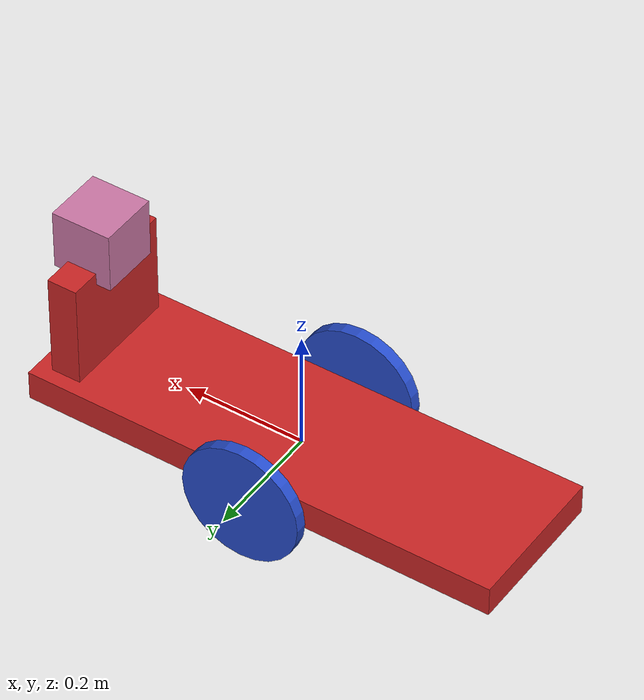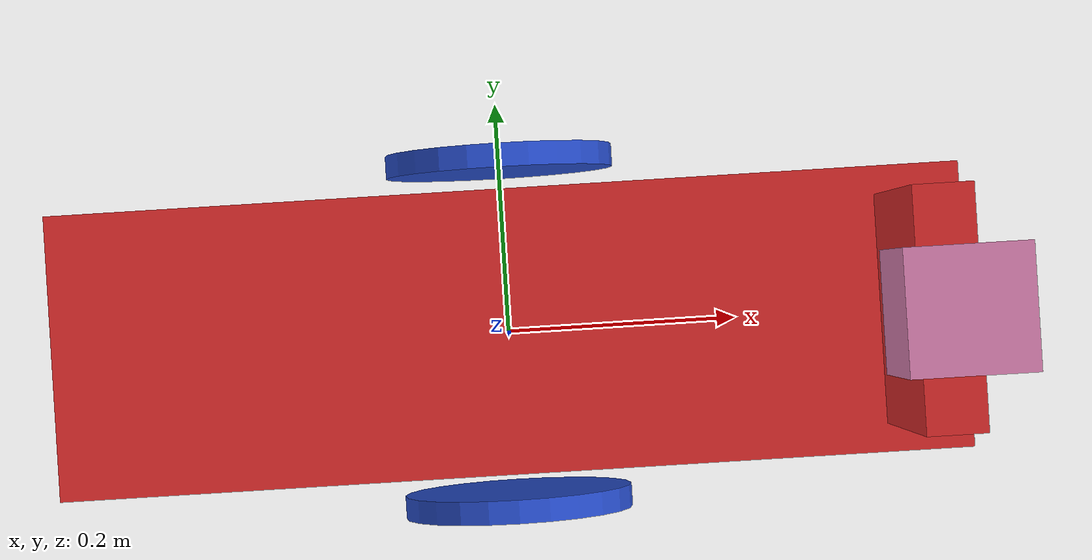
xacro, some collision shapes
<?xml version='1.0'?>

<robot name="my_robot" xmlns:xacro="http://www.ros.org/wiki/xacro">

  <xacro:include filename="$(find my_robot)/urdf/my_robot.gazebo" />

  <link name="robot_footprint"></link>

  <joint name="robot_footprint_joint" type="fixed">
    <origin xyz="0 0 0" rpy="0 0 0" />
    <parent link="robot_footprint"/>
    <child link="chassis" />
  </joint>

  <link name='chassis'>
    <pose>0 0 0.05 0 0 0</pose>

    <inertial>
      <mass value="15.0"/>
      <origin xyz="0.0 0 0" rpy=" 0 0 0"/>
      <inertia
          ixx="0.1" ixy="0" ixz="0"
          iyy="0.1" iyz="0"
          izz="0.1"
      />
    </inertial>

    <collision name='collision'>
      <origin xyz="0 0 0" rpy=" 0 0 0"/>
      <geometry>
        <box size=".8 .25 .05"/>
      </geometry>
    </collision>

    <visual>
      <origin xyz="0 0 0" rpy=" 0 0 0"/>
      <geometry>
        <box size=".8 .25 .05"/>
      </geometry>
    </visual>

    <collision name='front_caster_collision'>
      <origin xyz="0.3 0 -0.05" rpy=" 0 0 0"/>
      <geometry>
        <sphere radius="0.0499"/>
      </geometry>
    </collision>

    <visual>
      <origin xyz="0.3 0 -0.05" rpy=" 0 0 0"/>
      <geometry>
        <sphere radius="0.05"/>
      </geometry>
    </visual>

    <collision name='back_caster_collision'>
      <origin xyz="-0.3 0 -0.05" rpy=" 0 1.5707 1.5707"/>
      <geometry>
        <cylinder length="0.02" radius="0.05"/>
      </geometry>
    </collision>

    <visual>
      <origin xyz="-0.3 0 -0.05" rpy=" 0 1.5707 1.5707"/>
      <geometry>
        <cylinder length="0.02" radius="0.05"/>
      </geometry>
    </visual>

    <collision name='platform'>
      <origin xyz="0.35 0 0.1" rpy=" 0 0 0"/>
      <geometry>
        <box size=".05 .2 .2"/>
      </geometry>
    </collision>

    <visual>
      <origin xyz="0.35 0 0.1" rpy=" 0 0 0"/>
      <geometry>
        <box size=".05 .2 .2"/>
      </geometry>
    </visual>

  </link>

  <link name='left_wheel'>
    <inertial>
      <mass value="5"/>
      <origin xyz="0.0 0 0" rpy=" 0 1.5707 1.5707"/>
      <inertia
          ixx="0.1" ixy="0" ixz="0"
          iyy="0.1" iyz="0"
          izz="0.1"
      />
    </inertial>

    <collision name='collision'>
      <origin xyz="0 0 0" rpy=" 0 1.5707 1.5707"/>
      <geometry>
        <cylinder length="0.02" radius="0.1"/>
      </geometry>
    </collision>

    <visual>
      <origin xyz="0 0 0" rpy=" 0 1.5707 1.5707"/>
      <geometry>
        <cylinder length="0.02" radius="0.1"/>
      </geometry>
    </visual>

  </link>

  <link name='right_wheel'>
    <inertial>
      <mass value="5"/>
      <origin xyz="0.0 0 0" rpy=" 0 1.5707 1.5707"/>
      <inertia
          ixx="0.1" ixy="0" ixz="0"
          iyy="0.1" iyz="0"
          izz="0.1"
      />
    </inertial>

    <collision name='collision'>
      <origin xyz="0 0 0" rpy=" 0 1.5707 1.5707"/>
      <geometry>
        <cylinder length="0.02" radius="0.1"/>
      </geometry>
    </collision>

    <visual>
      <origin xyz="0 0 0" rpy=" 0 1.5707 1.5707"/>
      <geometry>
        <cylinder length="0.02" radius="0.1"/>
      </geometry>
    </visual>

  </link>

  <joint type="continuous" name="left_wheel_hinge">
    <origin xyz="0.0 0.15 0" rpy="0 0 0"/>
    <child link="left_wheel"/>
    <parent link="chassis"/>
    <axis xyz="0 1 0" rpy="0 0 0"/>
    <limit effort="10000" velocity="1000"/>
    <dynamics damping="1.0" friction="1.0"/>
  </joint>

  <joint type="continuous" name="right_wheel_hinge">
    <origin xyz="0.0 -0.15 0" rpy="0 0 0"/>
    <child link="right_wheel"/>
    <parent link="chassis"/>
    <axis xyz="0 1 0" rpy="0 0 0"/>
    <limit effort="10000" velocity="1000"/>
    <dynamics damping="1.0" friction="1.0"/>
  </joint>

  <link name='camera'>
    <inertial>
      <mass value="0.1"/>
      <origin xyz="0 0 0" rpy=" 0 0 0"/>
      <inertia
          ixx="1e-6" ixy="0" ixz="0"
          iyy="1e-6" iyz="0"
          izz="1e-6"
      />
    </inertial>

    <collision name='collision'>
      <origin xyz="0 0 0" rpy="1.5707 0 1.5707"/>
      <geometry>
        <cylinder length="0.02" radius="0.03"/>
      </geometry>
    </collision>

    <visual>
      <origin xyz="0 0 0" rpy="1.5707 0 1.5707"/>
      <geometry>
        <cylinder length="0.02" radius="0.03"/>
      </geometry>
    </visual>

  </link>

  <joint type="fixed" name="camera_joint">
    <origin xyz="0.38 0 0.1" rpy="0 0 0"/>
    <child link="camera"/>
    <parent link="chassis"/>
    <axis xyz="0 1 0" rpy="0 0 0"/>
  </joint>

   <joint name="camera_optical_joint" type="fixed">
    <origin xyz="0 0 0" rpy="-1.5707 0 -1.5707"/>
    <parent link="camera"/>
    <child link="camera_link_optical"/>
  </joint>

  <link name="camera_link_optical">
  </link>

  <link name='hokuyo'>
    <inertial>
      <mass value="1e-5"/>
      <origin xyz="0 0 0" rpy=" 0 0 0"/>
      <inertia
          ixx="1e-6" ixy="0" ixz="0"
          iyy="1e-6" iyz="0"
          izz="1e-6"
      />
    </inertial>

    <collision name='collision'>
      <origin xyz="0 0 0" rpy=" 0 0 0"/>
      <geometry>
        <box size="0.1 0.1 0.1"/>
      </geometry>
    </collision>

    <visual name='visual'>
      <origin xyz="0 0 0" rpy=" 0 0 0"/>
      <geometry>
        <mesh filename="package://my_robot/meshes/hokuyo.dae"/>
      </geometry>
    </visual>

  </link>

  <joint type="fixed" name="hokuyo_joint">
    <origin xyz="0.35 0 0.23" rpy="0 0 0"/>
    <child link="hokuyo"/>
    <parent link="chassis"/>
    <axis xyz="0 1 0" rpy="0 0 0"/>
  </joint>

  <gazebo reference="camera">
    <material>Gazebo/Green</material>
  </gazebo>

  <gazebo reference="chassis">
    <material>Gazebo/Red</material>
  </gazebo>

  <gazebo reference="left_wheel">
    <material>Gazebo/Blue</material>
  </gazebo>

  <gazebo reference="right_wheel">
    <material>Gazebo/Blue</material>
  </gazebo>

</robot>
